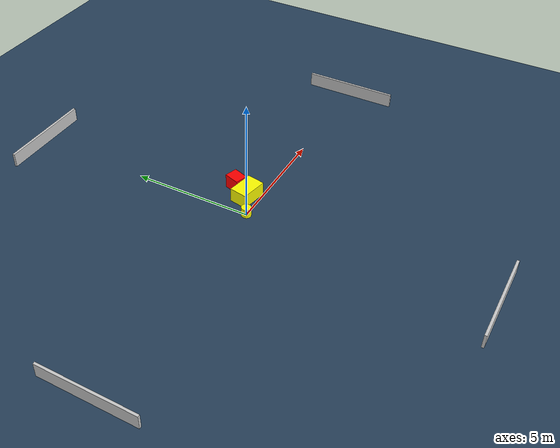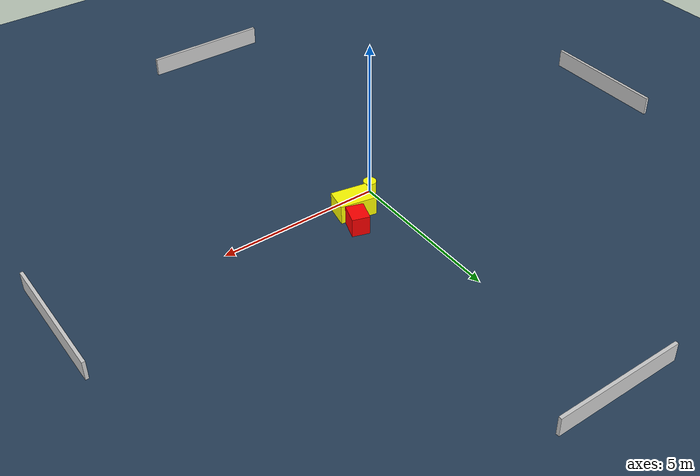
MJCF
<?xml version="1.0" ?>
<mujoco model="generated_environment">
  <option timestep="0.01" integrator="RK4" cone="elliptic"/>
  <default>
    <geom density="1"/>
  </default>
  <asset>
    <texture builtin="gradient" height="3072" name="skybox" rgb1="0.3 0.5 0.7" rgb2="0 0 0" type="skybox" width="512"/>
    <texture builtin="checker" height="300" name="groundplane" rgb1="0.2 0.3 0.4" rgb2="0.1 0.2 0.3" type="2d" width="300"/>
    <material name="groundplane" reflectance="0.2" texrepeat="5 5" texture="groundplane"/>
  </asset>
  <worldbody>
    <light dir="0 0 -1" directional="true" pos="0 0 1.5"/>
    <geom condim="3" friction="0.5 0.005 0.001" material="groundplane" name="floor" pos="0 0 0" size="0 0 0.05" type="plane"/>
    <body name="walls">
      <geom name="wall_1" condim="4" pos="-10.0 0.0 0.3" rgba="0.800000011920929 0.800000011920929 0.800000011920929 1.0" size="0.05 2.0 0.3" type="box"/>
      <geom name="wall_2" condim="4" pos="10.0 0.0 0.3" rgba="0.800000011920929 0.800000011920929 0.800000011920929 1.0" size="0.05 2.0 0.3" type="box"/>
      <geom name="wall_3" condim="4" pos="0.0 -10.0 0.3" rgba="0.800000011920929 0.800000011920929 0.800000011920929 1.0" size="2.0 0.05 0.3" type="box"/>
      <geom name="wall_4" condim="4" pos="0.0 10.0 0.3" rgba="0.800000011920929 0.800000011920929 0.800000011920929 1.0" size="2.0 0.05 0.3" type="box"/>
    </body>
    <body name="robot">
      <joint name="joint_x" type="slide" pos="0 0 0" axis="1 0 0"/>
      <joint name="joint_y" type="slide" pos="0 0 0" axis="0 1 0"/>
      <geom name="robot" type="cylinder" pos="0.0 0.0 0.2" size="0.2 0.2 0.0" mass="5.0" friction="1.0 0.005 0.0001" condim="4" rgba="1.0 1.0 0.0 1.0"/>
    </body>
    <body name="obstacle_1_movable">
      <geom name="obstacle_1_movable" condim="4" pos="0.9558553747411779 0.5026489552862821 0.3" euler="0 0 169.14485268898895" friction="0.0 0.005 0.001" rgba="1.0 1.0 0.0 1.0" size="0.5612506574698156 0.37200556057524137 0.3" type="box" mass="0.1"/>
      <joint type="free"/>
    </body>
    <body name="obstacle_2_static">
      <geom name="obstacle_2_static" condim="4" pos="1.312282369827418 1.203408814552146 0.3" euler="0 0 71.70049375056394" friction="0.0 0.005 0.001" rgba="1.0 0.0 0.0 1.0" size="0.3265698688885171 0.2698076623972296 0.3" type="box"/>
    </body>
  </worldbody>
  <actuator>
    <motor name="actuator_x" joint="joint_x" gear="1" ctrlrange="-1 1"/>
    <motor name="actuator_y" joint="joint_y" gear="1" ctrlrange="-1 1"/>
  </actuator>
</mujoco>
